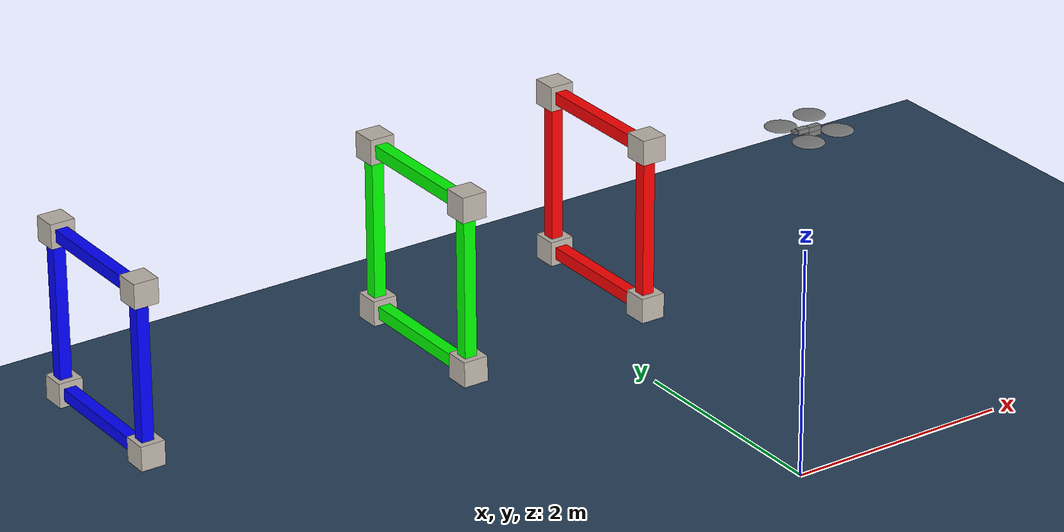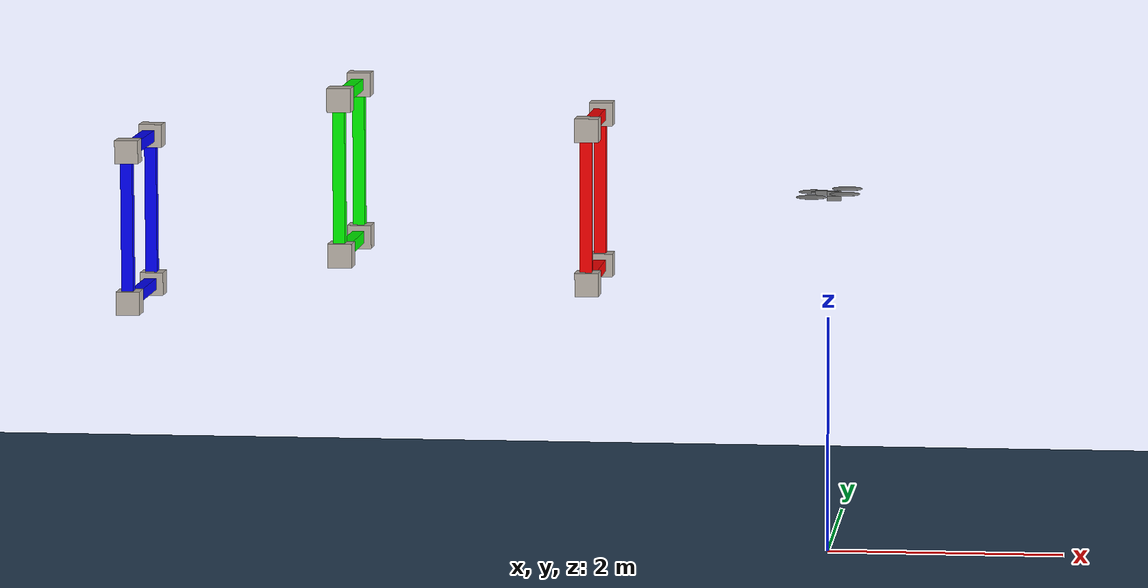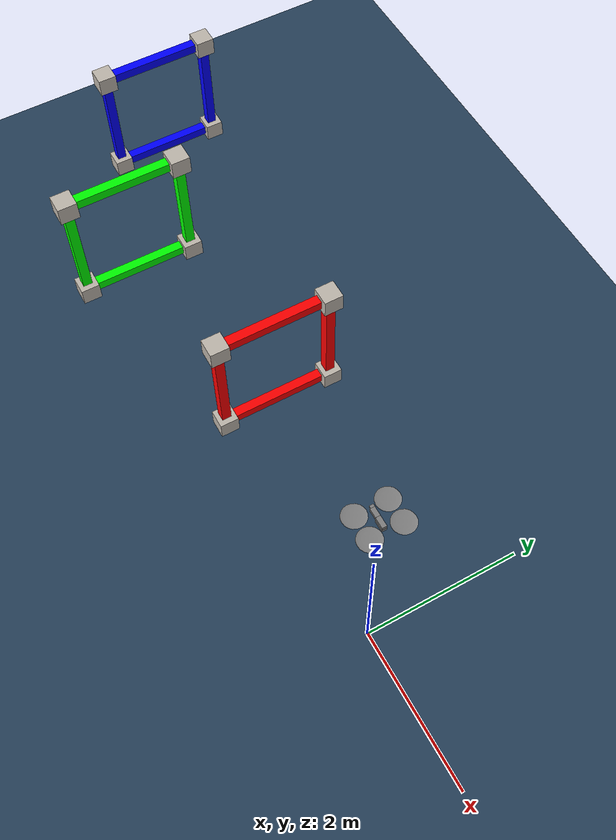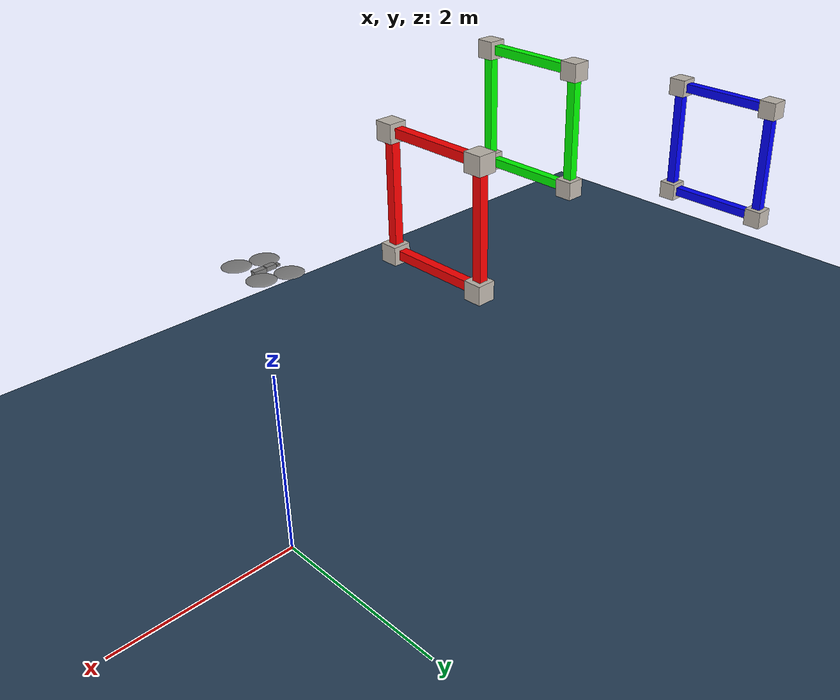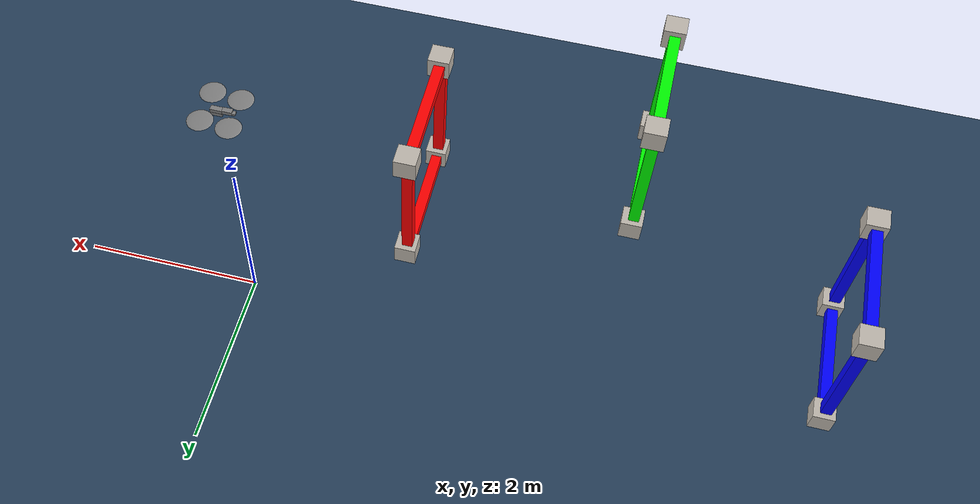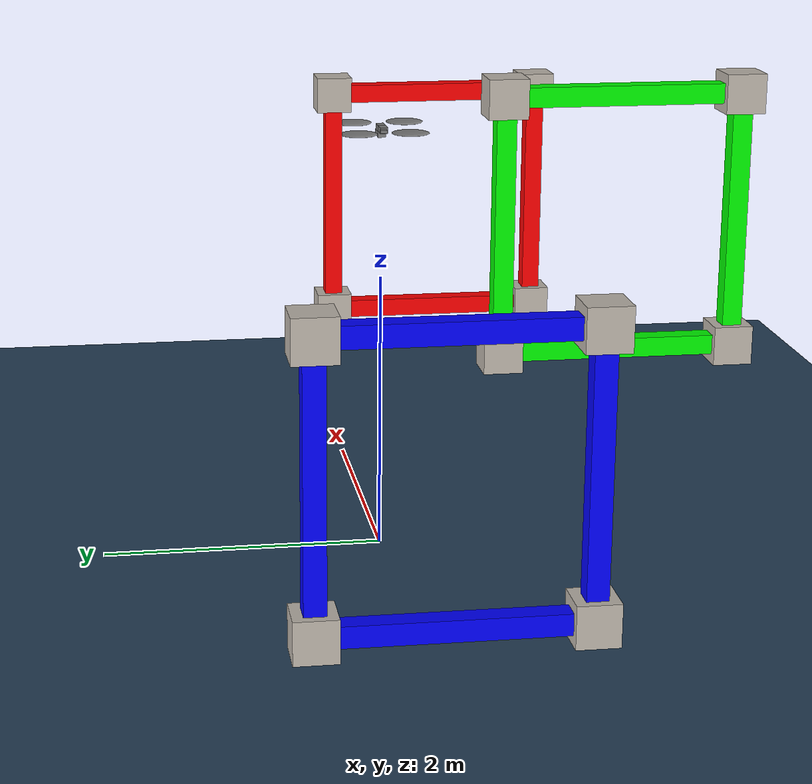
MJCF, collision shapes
<mujoco model="Skydio X2 scene">
  <include file="x2.xml"/>

  <statistic center="0 0 0.1" extent="0.6" meansize=".05"/>

  <visual>
    <headlight diffuse="0.6 0.6 0.6" ambient="0.3 0.3 0.3" specular="0 0 0"/>
    <rgba haze="0.15 0.25 0.35 1"/>
    <global azimuth="-20" elevation="-20" ellipsoidinertia="true"/>
  </visual>

  <asset>
    <texture type="skybox" builtin="gradient" rgb1="0.3 0.5 0.7" rgb2="0 0 0" width="512" height="3072"/>
    <texture type="2d" name="groundplane" builtin="checker" mark="edge" rgb1="0.2 0.3 0.4" rgb2="0.1 0.2 0.3"
      markrgb="0.8 0.8 0.8" width="300" height="300"/>
    <texture type="2d" name="aruco_tag" file="marker_0.png"/>
    <material name="groundplane" texture="groundplane" texuniform="true" texrepeat="5 5" reflectance="0.2"/>
    <material name="aruco_material" texture="aruco_tag" texuniform="true" reflectance="0"/>

    <!-- Red Gate Markers (0-3) -->
    <texture name="tex_0" type="cube" fileright="marker_0.png"/> <material name="mat_0" texture="tex_0" texuniform="true"/>
    <texture name="tex_1" type="cube" fileright="marker_1.png"/> <material name="mat_1" texture="tex_1" texuniform="true"/>
    <texture name="tex_2" type="cube" fileright="marker_2.png"/> <material name="mat_2" texture="tex_2" texuniform="true"/>
    <texture name="tex_3" type="cube" fileright="marker_3.png"/> <material name="mat_3" texture="tex_3" texuniform="true"/>

    <!-- Green Gate Markers (4-7) -->
    <texture name="tex_4" type="cube" fileright="marker_4.png"/> <material name="mat_4" texture="tex_4" texuniform="true"/>
    <texture name="tex_5" type="cube" fileright="marker_5.png"/> <material name="mat_5" texture="tex_5" texuniform="true"/>
    <texture name="tex_6" type="cube" fileright="marker_6.png"/> <material name="mat_6" texture="tex_6" texuniform="true"/>
    <texture name="tex_7" type="cube" fileright="marker_7.png"/> <material name="mat_7" texture="tex_7" texuniform="true"/>

    <!-- Blue Gate Markers (8-11) -->
    <texture name="tex_8" type="cube" fileright="marker_8.png"/> <material name="mat_8" texture="tex_8" texuniform="true"/>
    <texture name="tex_9" type="cube" fileright="marker_9.png"/> <material name="mat_9" texture="tex_9" texuniform="true"/>
    <texture name="tex_10" type="cube" fileright="marker_10.png"/> <material name="mat_10" texture="tex_10" texuniform="true"/>
    <texture name="tex_11" type="cube" fileright="marker_11.png"/> <material name="mat_11" texture="tex_11" texuniform="true"/>
  </asset>

  <worldbody>
    <light pos="0 0 1.5" dir="0 0 -1" directional="true"/>
    <geom name="floor" size="0 0 0.05" type="plane" material="groundplane"/>

    <body name="red_gate" pos="-2 0 3">
      <geom type="box" pos="0 -0.6 0" size="0.05 0.05 0.6" rgba="1 0 0 1"/>
      <geom type="box" pos="0 0.6 0" size="0.05 0.05 0.6" rgba="1 0 0 1"/>
      <geom type="box" pos="0 0 0.65" size="0.05 0.65 0.05" rgba="1 0 0 1"/>
      <geom type="box" pos="0 0 -0.65" size="0.05 0.65 0.05" rgba="1 0 0 1"/>
      <!-- Markers 0-3 -->
      <geom type="box" material="mat_0" pos="0.01 0.6 0.65" size=".1 .1 .1"/>
      <geom type="box" material="mat_1" pos="0.01 -0.6 0.65" size=".1 .1 .1"/>
      <geom type="box" material="mat_2" pos="0.01 -0.6 -0.65" size=".1 .1 .1"/>
      <geom type="box" material="mat_3" pos="0.01 0.6 -0.65" size=".1 .1 .1"/>
    </body>

    <body name="green_gate" pos="-4 -0.6 3.3">
      <geom type="box" pos="0 -0.6 0" size="0.05 0.05 0.6" rgba="0 1 0 1"/>
      <geom type="box" pos="0 0.6 0" size="0.05 0.05 0.6" rgba="0 1 0 1"/>
      <geom type="box" pos="0 0 0.65" size="0.05 0.65 0.05" rgba="0 1 0 1"/>
      <geom type="box" pos="0 0 -0.65" size="0.05 0.65 0.05" rgba="0 1 0 1"/>
      <!-- Markers 4-7 -->
      <geom type="box" material="mat_4" pos="0.01 0.6 0.65" size=".1 .1 .1"/>
      <geom type="box" material="mat_5" pos="0.01 -0.6 0.65" size=".1 .1 .1"/>
      <geom type="box" material="mat_6" pos="0.01 -0.6 -0.65" size=".1 .1 .1"/>
      <geom type="box" material="mat_7" pos="0.01 0.6 -0.65" size=".1 .1 .1"/>
    </body>

    <body name="blue_gate" pos="-6 0.6 2.7">
      <geom type="box" pos="0 -0.6 0" size="0.05 0.05 0.6" rgba="0 0 1 1"/>
      <geom type="box" pos="0 0.6 0" size="0.05 0.05 0.6" rgba="0 0 1 1"/>
      <geom type="box" pos="0 0 0.65" size="0.05 0.65 0.05" rgba="0 0 1 1"/>
      <geom type="box" pos="0 0 -0.65" size="0.05 0.65 0.05" rgba="0 0 1 1"/>
      <!-- Markers 8-11 -->
      <geom type="box" material="mat_8" pos="0.01 0.6 0.65" size=".1 .1 .1"/>
      <geom type="box" material="mat_9" pos="0.01 -0.6 0.65" size=".1 .1 .1"/>
      <geom type="box" material="mat_10" pos="0.01 -0.6 -0.65" size=".1 .1 .1"/>
      <geom type="box" material="mat_11" pos="0.01 0.6 -0.65" size=".1 .1 .1"/>
    </body>

  </worldbody>
</mujoco>

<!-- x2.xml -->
<mujoco model="Skydio X2">
  <compiler autolimits="true" assetdir="assets"/>

  <option timestep="0.01" density="1.225" viscosity="1.8e-5"/>

  <default>
    <default class="x2">
      <geom mass="0"/>
      <motor ctrlrange="0 13"/>
      <mesh scale="0.01 0.01 0.01"/>
      <default class="visual">
        <geom group="2" type="mesh" contype="0" conaffinity="0"/>
      </default>
      <default class="collision">
        <geom group="3" type="box"/>
        <default class="rotor">
          <geom type="ellipsoid" size=".13 .13 .01"/>
        </default>
      </default>
      <site group="5"/>
    </default>
  </default>

  <asset>
    <texture type="2d" file="X2_lowpoly_texture_SpinningProps_1024.png"/>
    <material name="phong3SG" texture="X2_lowpoly_texture_SpinningProps_1024"/>
    <material name="invisible" rgba="0 0 0 0"/>

    <mesh class="x2" file="X2_lowpoly.obj"/>
  </asset>

  <worldbody>
    <light name="spotlight" mode="targetbodycom" target="x2" pos="0 -1 2"/>
    <body name="x2" pos="0 0 3" childclass="x2">
      <freejoint/>
      <camera name="track" pos="1 0 .5" xyaxes="0 1 0 -1 0 2" mode="trackcom"/> <!-- Track camera, rotated to face the opposite direction than originally -->
      <camera name="front_camera" pos="-0.16 0 0.02" xyaxes="0 1 0 0 0 1" fovy="90" mode="fixed"/> <!-- Forward facing camera -->
      <site name="imu" pos="0 0 .02"/>
      <geom material="phong3SG" mesh="X2_lowpoly" class="visual" quat="0 0 1 1"/>
      <geom class="collision" size=".06 .027 .02" pos=".04 0 .02"/>
      <geom class="collision" size=".06 .027 .02" pos=".04 0 .06"/>
      <geom class="collision" size=".05 .027 .02" pos="-.07 0 .065"/>
      <geom class="collision" size=".023 .017 .01" pos="-.137 .008 .065" quat="1 0 0 1"/>
      <geom name="rotor1" class="rotor" pos="-.14 -.18 .05" mass=".25"/>
      <geom name="rotor2" class="rotor" pos="-.14 .18 .05" mass=".25"/>
      <geom name="rotor3" class="rotor" pos=".14 .18 .08" mass=".25"/>
      <geom name="rotor4" class="rotor" pos=".14 -.18 .08" mass=".25"/>
      <geom size=".16 .04 .02" pos="0 0 0.02" type="ellipsoid" mass=".325" class="visual" material="invisible"/>
      <site name="thrust1" pos="-.14 -.18 .05"/>
      <site name="thrust2" pos="-.14 .18 .05"/>
      <site name="thrust3" pos=".14 .18 .08"/>
      <site name="thrust4" pos=".14 -.18 .08"/>
    </body>
  </worldbody>

  <actuator>
    <motor class="x2" name="thrust1" site="thrust1" gear="0 0 1 0 0 -.0201"/>
    <motor class="x2" name="thrust2" site="thrust2" gear="0 0 1 0 0  .0201"/>
    <motor class="x2" name="thrust3" site="thrust3" gear="0 0 1 0 0 -.0201"/>
    <motor class="x2" name="thrust4" site="thrust4" gear="0 0 1 0 0  .0201"/>
  </actuator>

  <sensor>
    <gyro name="body_gyro" site="imu"/>
    <accelerometer name="body_linacc" site="imu"/>
    <framequat name="body_quat" objtype="site" objname="imu"/>
  </sensor>

  <keyframe>
    <key name="hover" qpos="0 0 .3 1 0 0 0" ctrl="3.2495625 3.2495625 3.2495625 3.2495625"/>
  </keyframe>
</mujoco>
